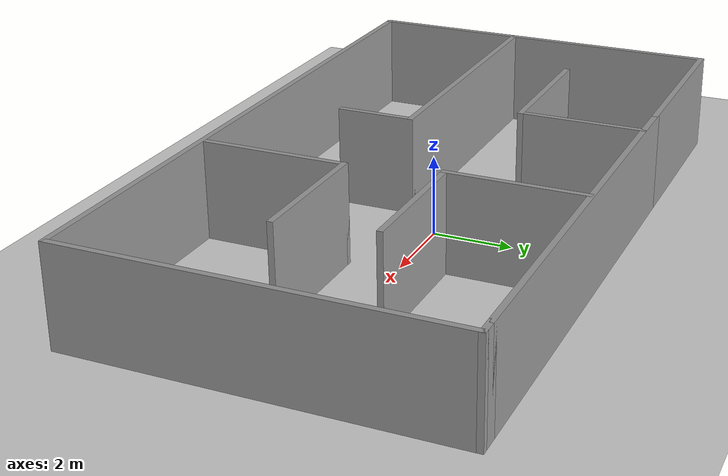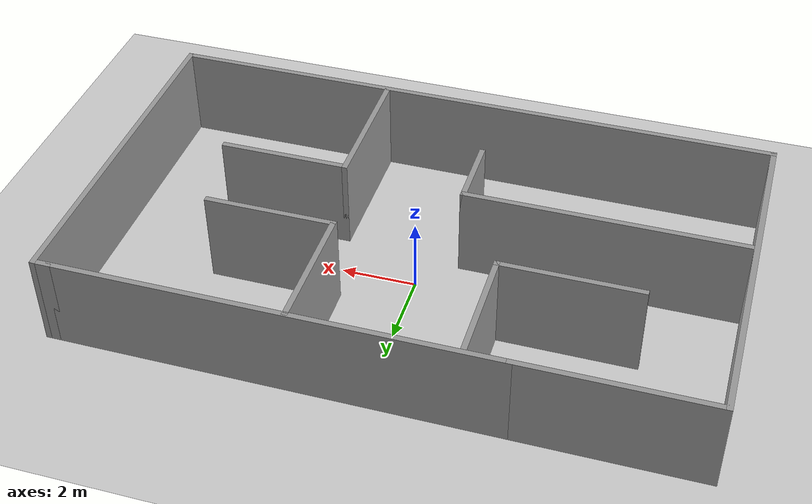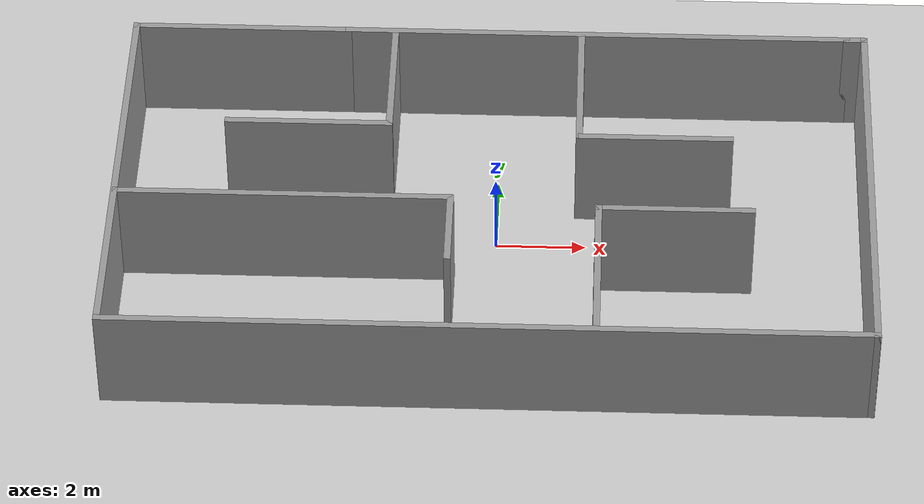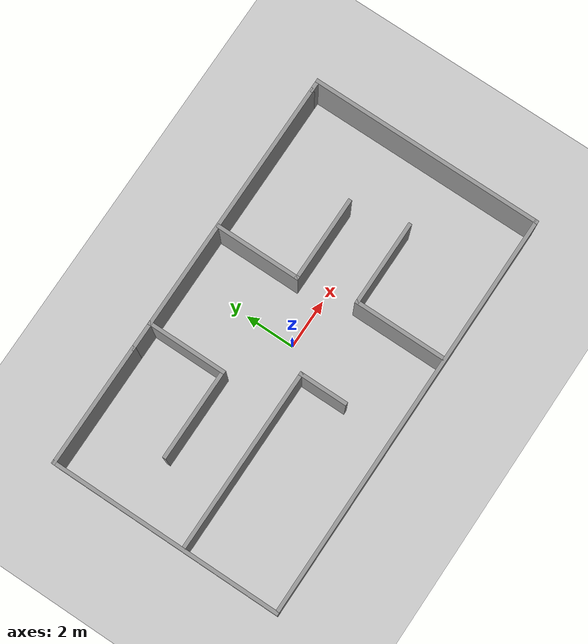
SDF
<sdf version="1.7">
 <world name="default">
  <light name="sun" type="directional">
   <pose>0 0 10 0 -0 0</pose>
   <diffuse>0.8 0.8 0.8 1</diffuse>
   <specular>0.2 0.2 0.2 1</specular>
   <attenuation>
    <range>1000</range>
    <constant>0.9</constant>
    <linear>0.01</linear>
    <quadratic>0.001</quadratic>
   </attenuation>
   <direction>-0.5 0.1 -0.9</direction>
   <spot><inner_angle>0</inner_angle><outer_angle>0</outer_angle><falloff>0</falloff></spot>
  </light>
  <model name="ground_plane">
   <static>1</static>
   <link name="link">
    <collision name="collision">
     <geometry><plane><normal>0 0 1</normal><size>100 100</size></plane></geometry>
     <surface>
      <contact><collide_bitmask>65535</collide_bitmask></contact>
      <friction><ode><mu>100</mu><mu2>50</mu2></ode></friction>
     </surface>
    </collision>
    <visual name="visual">
     <cast_shadows>0</cast_shadows>
     <geometry><plane><normal>0 0 1</normal><size>100 100</size></plane></geometry>
     <material>
      <script><uri>file://media/materials/scripts/gazebo.material</uri><name>Gazebo/Grey</name></script>
     </material>
    </visual>
   </link>
  </model>
  <gravity>0 0 -9.8</gravity>
  <magnetic_field>6e-06 2.3e-05 -4.2e-05</magnetic_field>
  <atmosphere type="adiabatic"/>
  <physics type="ode">
   <max_step_size>0.001</max_step_size>
   <real_time_factor>1</real_time_factor>
   <real_time_update_rate>1000</real_time_update_rate>
  </physics>
  <scene><ambient>0.4 0.4 0.4 1</ambient><background>0.7 0.7 0.7 1</background><shadows>1</shadows></scene>
  <audio><device>default</device></audio>
  <spherical_coordinates>
   <surface_model>EARTH_WGS84</surface_model>
   <latitude_deg>0</latitude_deg>
   <longitude_deg>0</longitude_deg>
   <elevation>0</elevation>
   <heading_deg>0</heading_deg>
  </spherical_coordinates>
  <model name="room">
   <pose>-0.058602 0.04084 0 0 -0 0</pose>
   <link name="Wall_0">
    <collision name="Wall_0_Collision">
     <geometry><box><size>11.5 0.15 2.5</size></box></geometry>
     <pose>0 0 1.25 0 -0 0</pose>
    </collision>
    <visual name="Wall_0_Visual">
     <pose>0 0 1.25 0 -0 0</pose>
     <geometry><box><size>11.5 0.15 2.5</size></box></geometry>
     <material>
      <script><uri>file://media/materials/scripts/gazebo.material</uri><name>Gazebo/Grey</name></script>
      <ambient>1 1 1 1</ambient>
     </material>
     <meta><layer>0</layer></meta>
    </visual>
    <pose>2.225 4.3675 0 0 -0 0</pose>
   </link>
   <link name="Wall_10">
    <collision name="Wall_10_Collision">
     <geometry><box><size>3.75 0.15 2.5</size></box></geometry>
     <pose>0 0 1.25 0 -0 0</pose>
    </collision>
    <visual name="Wall_10_Visual">
     <pose>0 0 1.25 0 -0 0</pose>
     <geometry><box><size>3.75 0.15 2.5</size></box></geometry>
     <material>
      <script><uri>file://media/materials/scripts/gazebo.material</uri><name>Gazebo/Grey</name></script>
      <ambient>1 1 1 1</ambient>
     </material>
     <meta><layer>0</layer></meta>
    </visual>
    <pose>-4.17239 1.26477 0 0 -0 3.14159</pose>
   </link>
   <link name="Wall_12">
    <collision name="Wall_12_Collision">
     <geometry><box><size>7.5 0.15 2.5</size></box></geometry>
     <pose>0 0 1.25 0 -0 0</pose>
    </collision>
    <visual name="Wall_12_Visual">
     <pose>0 0 1.25 0 -0 0</pose>
     <geometry><box><size>7.5 0.15 2.5</size></box></geometry>
     <material>
      <script><uri>file://media/materials/scripts/gazebo.material</uri><name>Gazebo/Grey</name></script>
      <ambient>1 1 1 1</ambient>
     </material>
     <meta><layer>0</layer></meta>
    </visual>
    <pose>-4.59067 -1.06589 0 0 -0 0</pose>
   </link>
   <link name="Wall_13">
    <collision name="Wall_13_Collision">
     <geometry><box><size>2 0.15 2.5</size></box></geometry>
     <pose>0 0 1.25 0 -0 0</pose>
    </collision>
    <visual name="Wall_13_Visual">
     <pose>0 0 1.25 0 -0 0</pose>
     <geometry><box><size>2 0.15 2.5</size></box></geometry>
     <material>
      <script><uri>file://media/materials/scripts/gazebo.material</uri><name>Gazebo/Grey</name></script>
      <ambient>1 1 1 1</ambient>
     </material>
     <meta><layer>0</layer></meta>
    </visual>
    <pose>-0.915668 -1.99089 0 0 -0 -1.5708</pose>
   </link>
   <link name="Wall_15">
    <collision name="Wall_15_Collision">
     <geometry><box><size>3.5 0.15 2.5</size></box></geometry>
     <pose>0 0 1.25 0 -0 0</pose>
    </collision>
    <visual name="Wall_15_Visual">
     <pose>0 0 1.25 0 -0 0</pose>
     <geometry><box><size>3.5 0.15 2.5</size></box></geometry>
     <material>
      <script><uri>file://media/materials/scripts/gazebo.material</uri><name>Gazebo/Grey</name></script>
      <ambient>1 1 1 1</ambient>
     </material>
     <meta><layer>0</layer></meta>
    </visual>
    <pose>1.87157 2.64955 0 0 -0 -1.5708</pose>
   </link>
   <link name="Wall_16">
    <collision name="Wall_16_Collision">
     <geometry><box><size>3.5 0.15 2.5</size></box></geometry>
     <pose>0 0 1.25 0 -0 0</pose>
    </collision>
    <visual name="Wall_16_Visual">
     <pose>0 0 1.25 0 -0 0</pose>
     <geometry><box><size>3.5 0.15 2.5</size></box></geometry>
     <material>
      <script><uri>file://media/materials/scripts/gazebo.material</uri><name>Gazebo/Grey</name></script>
      <ambient>1 1 1 1</ambient>
     </material>
     <meta><layer>0</layer></meta>
    </visual>
    <pose>3.54657 0.974548 0 0 -0 0</pose>
   </link>
   <link name="Wall_18">
    <collision name="Wall_18_Collision">
     <geometry><box><size>3.75 0.15 2.5</size></box></geometry>
     <pose>0 0 1.25 0 -0 0</pose>
    </collision>
    <visual name="Wall_18_Visual">
     <pose>0 0 1.25 0 -0 0</pose>
     <geometry><box><size>3.75 0.15 2.5</size></box></geometry>
     <material>
      <script><uri>file://media/materials/scripts/gazebo.material</uri><name>Gazebo/Grey</name></script>
      <ambient>1 1 1 1</ambient>
     </material>
     <meta><layer>0</layer></meta>
    </visual>
    <pose>2.33419 -3.08747 0 0 -0 1.5708</pose>
   </link>
   <link name="Wall_19">
    <collision name="Wall_19_Collision">
     <geometry><box><size>3.5 0.15 2.5</size></box></geometry>
     <pose>0 0 1.25 0 -0 0</pose>
    </collision>
    <visual name="Wall_19_Visual">
     <pose>0 0 1.25 0 -0 0</pose>
     <geometry><box><size>3.5 0.15 2.5</size></box></geometry>
     <material>
      <script><uri>file://media/materials/scripts/gazebo.material</uri><name>Gazebo/Grey</name></script>
      <ambient>1 1 1 1</ambient>
     </material>
     <meta><layer>0</layer></meta>
    </visual>
    <pose>4.00919 -1.28747 0 0 -0 0</pose>
   </link>
   <link name="Wall_2">
    <collision name="Wall_2_Collision">
     <geometry><box><size>5 0.15 2.5</size></box></geometry>
     <pose>0 0 1.25 0 -0 0</pose>
    </collision>
    <visual name="Wall_2_Visual">
     <pose>0 0 1.25 0 -0 0</pose>
     <geometry><box><size>5 0.15 2.5</size></box></geometry>
     <material>
      <script><uri>file://media/materials/scripts/gazebo.material</uri><name>Gazebo/Grey</name></script>
      <ambient>1 1 1 1</ambient>
     </material>
     <meta><layer>0</layer></meta>
    </visual>
    <pose>-5.875 4.3675 0 0 -0 3.14159</pose>
   </link>
   <link name="Wall_4">
    <collision name="Wall_4_Collision">
     <geometry><box><size>9.5 0.15 2.5</size></box></geometry>
     <pose>0 0 1.25 0 -0 0</pose>
    </collision>
    <visual name="Wall_4_Visual">
     <pose>0 0 1.25 0 -0 0</pose>
     <geometry><box><size>9.5 0.15 2.5</size></box></geometry>
     <material>
      <script><uri>file://media/materials/scripts/gazebo.material</uri><name>Gazebo/Grey</name></script>
      <ambient>1 1 1 1</ambient>
     </material>
     <meta><layer>0</layer></meta>
    </visual>
    <pose>-8.3 -0.3075 0 0 -0 -1.5708</pose>
   </link>
   <link name="Wall_5">
    <collision name="Wall_5_Collision">
     <geometry><box><size>16.75 0.15 2.5</size></box></geometry>
     <pose>0 0 1.25 0 -0 0</pose>
    </collision>
    <visual name="Wall_5_Visual">
     <pose>0 0 1.25 0 -0 0</pose>
     <geometry><box><size>16.75 0.15 2.5</size></box></geometry>
     <material>
      <script><uri>file://media/materials/scripts/gazebo.material</uri><name>Gazebo/Grey</name></script>
      <ambient>1 1 1 1</ambient>
     </material>
     <meta><layer>0</layer></meta>
    </visual>
    <pose>0 -4.9825 0 0 -0 0</pose>
   </link>
   <link name="Wall_6">
    <collision name="Wall_6_Collision">
     <geometry><box><size>9.5 0.15 2.5</size></box></geometry>
     <pose>0 0 1.25 0 -0 0</pose>
    </collision>
    <visual name="Wall_6_Visual">
     <pose>0 0 1.25 0 -0 0</pose>
     <geometry><box><size>9.5 0.15 2.5</size></box></geometry>
     <material>
      <script><uri>file://media/materials/scripts/gazebo.material</uri><name>Gazebo/Grey</name></script>
      <ambient>1 1 1 1</ambient>
     </material>
     <meta><layer>0</layer></meta>
    </visual>
    <pose>8.3 -0.3075 0 0 -0 1.5708</pose>
   </link>
   <link name="Wall_7">
    <collision name="Wall_7_Collision">
     <geometry><box><size>0.55 0.15 2.5</size></box></geometry>
     <pose>0 0 1.25 0 -0 0</pose>
    </collision>
    <visual name="Wall_7_Visual">
     <pose>0 0 1.25 0 -0 0</pose>
     <geometry><box><size>0.55 0.15 2.5</size></box></geometry>
     <material>
      <script><uri>file://media/materials/scripts/gazebo.material</uri><name>Gazebo/Grey</name></script>
      <ambient>1 1 1 1</ambient>
     </material>
     <meta><layer>0</layer></meta>
    </visual>
    <pose>8.1 4.3675 0 0 -0 3.14159</pose>
   </link>
   <link name="Wall_9">
    <collision name="Wall_9_Collision">
     <geometry><box><size>3.25 0.15 2.5</size></box></geometry>
     <pose>0 0 1.25 0 -0 0</pose>
    </collision>
    <visual name="Wall_9_Visual">
     <pose>0 0 1.25 0 -0 0</pose>
     <geometry><box><size>3.25 0.15 2.5</size></box></geometry>
     <material>
      <script><uri>file://media/materials/scripts/gazebo.material</uri><name>Gazebo/Grey</name></script>
      <ambient>1 1 1 1</ambient>
     </material>
     <meta><layer>0</layer></meta>
    </visual>
    <pose>-2.37239 2.81478 0 0 -0 -1.5708</pose>
   </link>
   <static>1</static>
  </model>
 </world>
</sdf>
